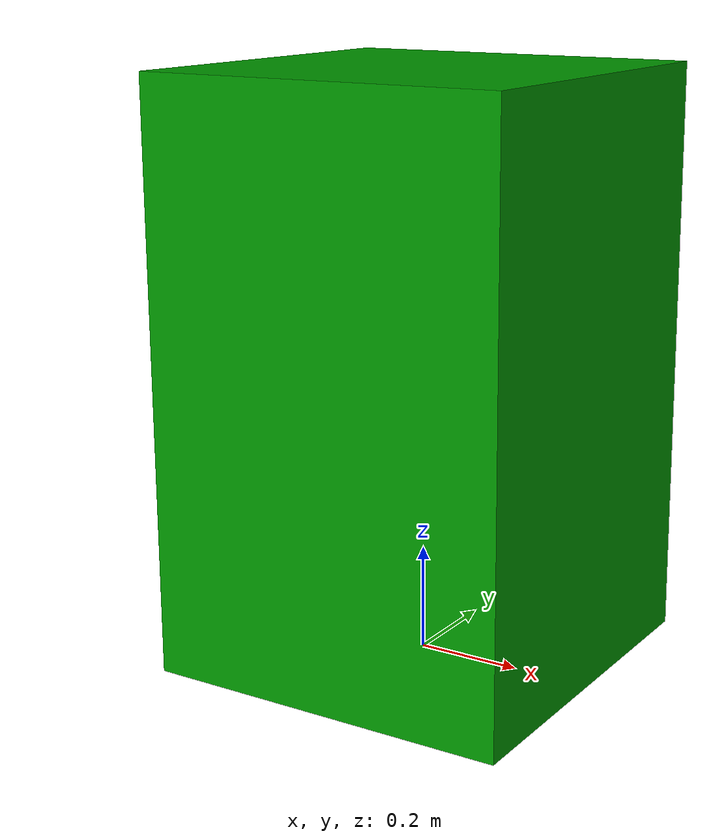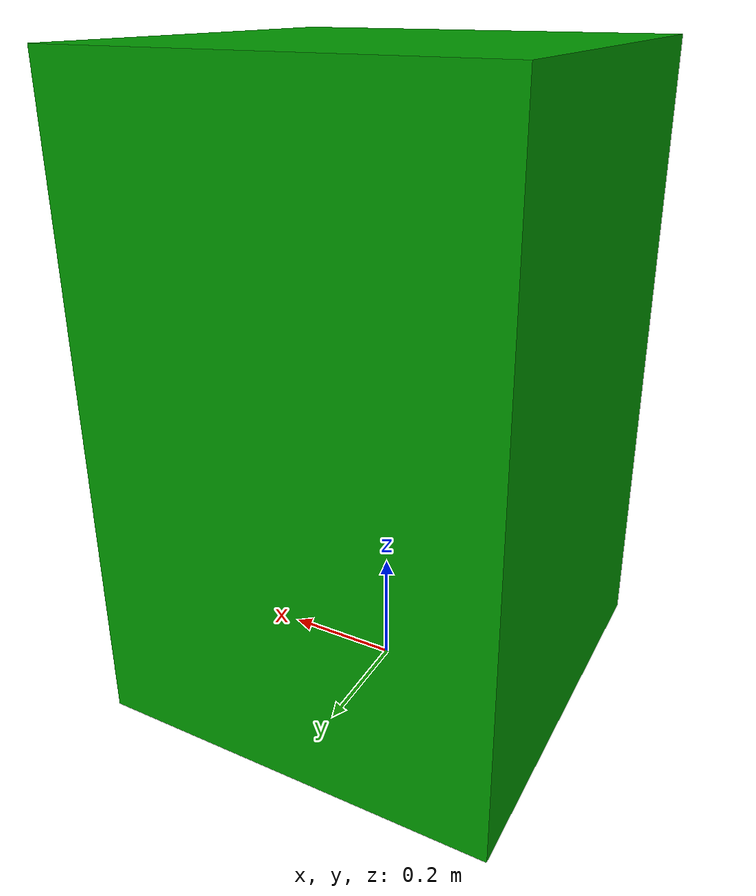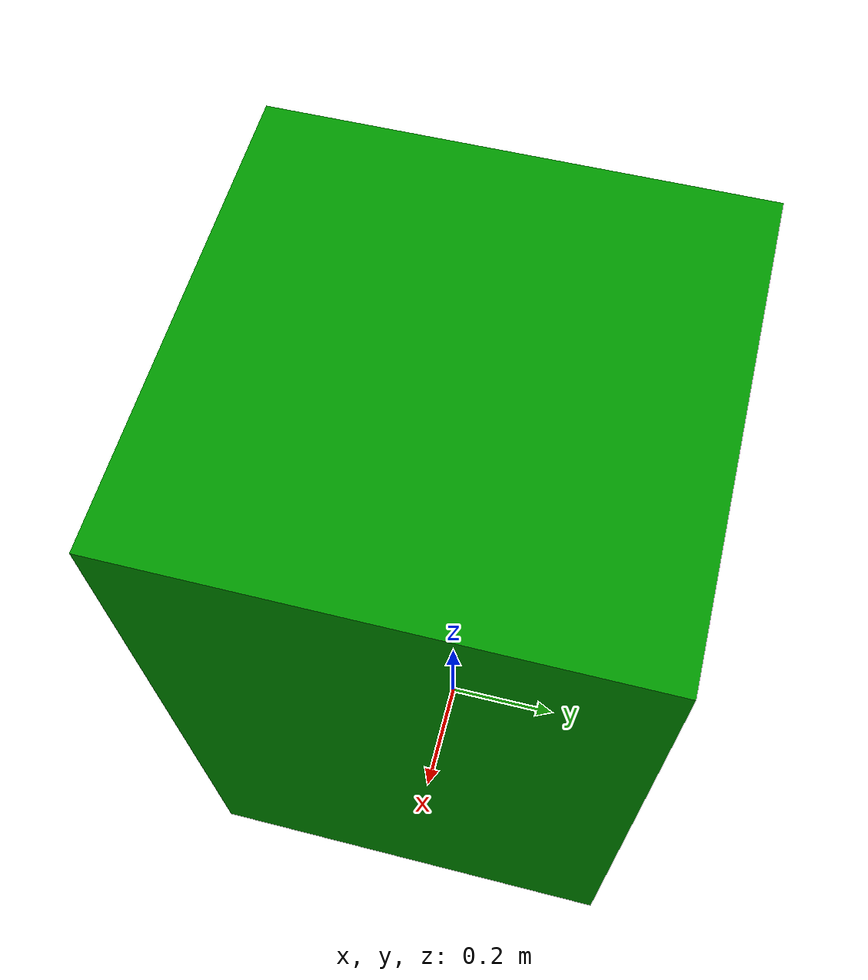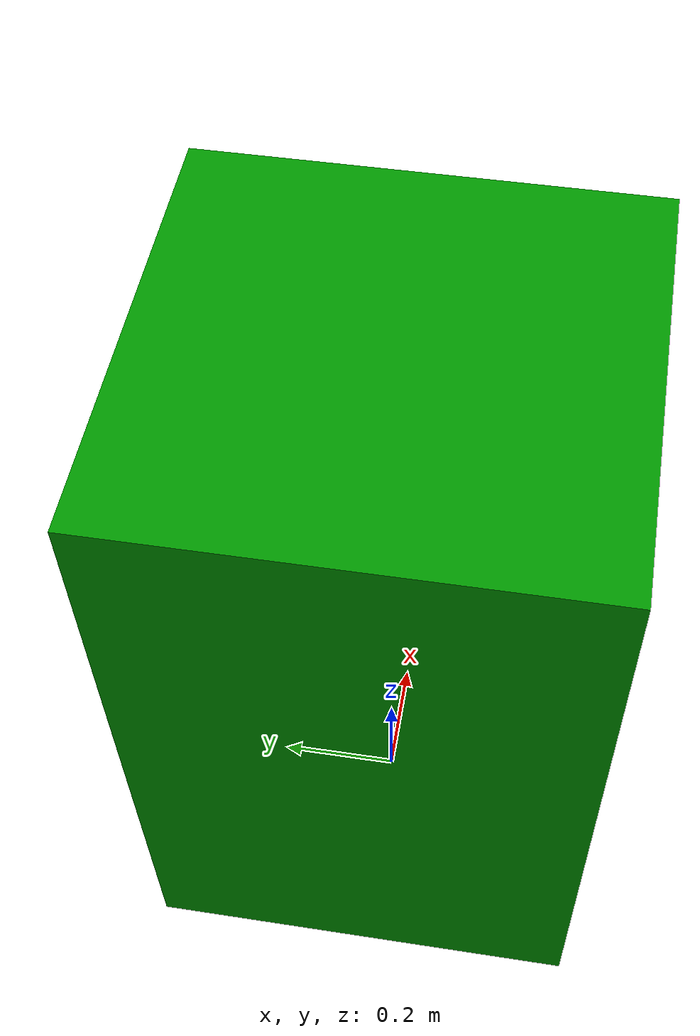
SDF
<?xml version="1.0"?>
<sdf version="1.6">
  <model name="rwc2015/plant_livingroom_low">
    <link name="1_link">
      <collision name="1_col">
        <geometry>
          <box>
            <size>0.7 0.7 1.1</size>
          </box>
        </geometry>
      </collision>
      <visual name="1_vis">
        <geometry>
          <box>
            <size>0.7 0.7 1.1</size>
          </box>
        </geometry>
        <material>
          <ambient>0.0 0.6 0.0 1</ambient>
        </material>
      </visual>
      <pose>0.0 0.0 0.55 0 0 0</pose>
    </link>
    <static>true</static>
  </model>
</sdf>
